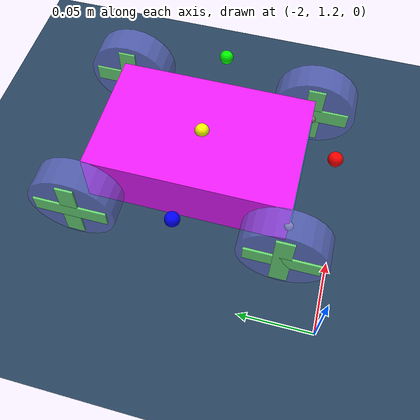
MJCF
<mujoco>
  <compiler autolimits="true"/>

  <asset>
    <texture name="grid" type="2d" builtin="checker" width="512" height="512" rgb1=".1 .2 .3" rgb2=".2 .3 .4"/>
    <material name="grid" texture="grid" texrepeat="1 1" texuniform="true" reflectance=".2"/>

  </asset>

  <default>
    <joint damping=".03" actuatorfrcrange="-0.5 0.5"/>
    <default class="wheel">
      <geom type="cylinder" size=".03 .01" rgba=".5 .5 1 0.5"/>
    </default>
    <default class="decor">
      <site type="box" rgba=".5 1 .5 0.8"/>
    </default>
  </default>

  <worldbody>
    <geom type="plane" size="5 5 .01" material="grid"/>
    <body name="car" pos="-1.9 1.3 .03" euler="0 0 -90">
      <freejoint/>
      <light name="top light" pos="0 0 2" mode="trackcom" diffuse=".4 .4 .4"/>
      <geom name="chasis" type="box" size="0.07 0.045 0.02" rgba="0.9 0.1 1 0.9"/>
      <body name="left wheel" pos="-.07 .06 0" zaxis="0 1 0">
        <joint name="left"/>
        <geom class="wheel"/>
        <site class="decor" size=".006 .025 .0115"/>
        <site class="decor" size=".025 .006 .0115"/>
      </body>
      <body name="right_wheel" pos="-.07 -.06 0" zaxis="0 1 0">
        <joint name="right"/>
        <geom class="wheel"/>
        <site class="decor" size=".006 .025 .0115"/>
        <site class="decor" size=".025 .006 .0115"/>
      </body>
            <!-- FRONT LEFT WHEEL with steering -->
      <body name="front_left_caster" pos=".07 .06 0">
       <!-- Добавляем маленький невидимый geom для массы -->
        <geom type="sphere" size="0.001" mass="0.001" rgba="0 0 0 0"/>
        <!-- Поворот влево/вправо (рулевое управление) -->
        <joint name="turn_front_left" type="hinge" axis="0 0 1"/>

        <body name="front_left_wheel" pos="0 0 0" zaxis="0 1 0">
          <!-- Вращение колеса -->
          <joint name="front_left" type="hinge" axis="0 1 0"/>
          <geom class="wheel"/>
          <site class="decor" size=".006 .025 .0115"/>
          <site class="decor" size=".025 .006 .0115"/>
        </body>
      </body>

      <!-- FRONT RIGHT WHEEL with steering -->
      <body name="front_right_caster" pos=".07 -.06 0">
        <geom type="sphere" size="0.001" mass="0.001" rgba="0 0 0 0"/>

        <!-- Поворот вправо/влево -->
        <joint name="turn_front_right" type="hinge" axis="0 0 1"/>

        <body name="front_right_wheel" pos="0 0 0" zaxis="0 1 0">
          <!-- Вращение колеса -->
          <joint name="front_right" type="hinge" axis="0 1 0"/>
          <geom class="wheel"/>
          <site class="decor" size=".006 .025 .0115"/>
          <site class="decor" size=".025 .006 .0115"/>
        </body>
      </body>

      <body name="fixed" pos="0.07 0 0" zaxis="1 0 0">
        <geom name="g4" type="box" size="0.001 0.045 0.001" rgba="0 0.5 0.5 1"/>
        <site name="s0" size="0.003" pos="0 0.045 0"/>
        <site name="s1" size="0.003" pos="0 -0.045 0"/>

     </body>

    <!-- Новый site для IMU -->
    <site name="imu" pos="0 0 0.02" size="0.005" rgba="1 1 0 1"/>
    <!-- Сенсоры расстояния / касания -->
    <site name="sensor_front" pos="0.09 0 0.02" size="0.005" rgba="1 0 0 1"/>
    <site name="sensor_left"  pos="0 0.07 0.02" size="0.005" rgba="0 1 0 1"/>
    <site name="sensor_right" pos="0 -0.07 0.02" size="0.005" rgba="0 0 1 1"/>

    </body>
  </worldbody>

  <tendon>
    <fixed name="forward">
      <joint joint="front_left" coef=".5"/>
      <joint joint="front_right" coef=".5"/>
    </fixed>
    <fixed name="turn">
      <joint joint="turn_front_left" coef="-1"/>
      <joint joint="turn_front_right" coef="1"/>
    </fixed>

    <fixed name="turn left wheel">
      <joint joint="front_left" coef="-0.5"/>
    </fixed>

    <fixed name="turn right wheel">
      <joint joint="front_right" coef="-0.5"/>
    </fixed>

  </tendon>

  <actuator>
    <motor name="forward" tendon="forward" ctrlrange="-100 100"/>
    <motor name="turn" tendon="turn" ctrlrange="-180 180"/>
    <!-- 🔧 Новые моторы для поворота передних колес -->
    <motor name="steer_left" joint="turn_front_left" ctrlrange="-0.5 0.5"/>
    <motor name="steer_right" joint="turn_front_right" ctrlrange="-0.5 0.5"/>

  </actuator>

   <sensor>
    <!-- Датчики нагрузки на двигатели -->
    <jointactuatorfrc name="right" joint="right"/>
    <jointactuatorfrc name="left" joint="left"/>

    <!-- Гироскоп -->
    <gyro name="gyro" site="imu"/>

    <!-- Акселерометр -->
    <accelerometer name="accel" site="imu"/>

    <!-- Лазерные дальномеры -->
    <rangefinder name="range_front" site="sensor_front"/>
    <rangefinder name="range_left" site="sensor_left"/>
    <rangefinder name="range_right" site="sensor_right"/>

    <!-- Сенсоры контакта (тач-сенсоры) -->
    <touch name="touch_front" site="sensor_front"/>
    <touch name="touch_left" site="sensor_left"/>
    <touch name="touch_right" site="sensor_right"/>
  </sensor>

</mujoco>
